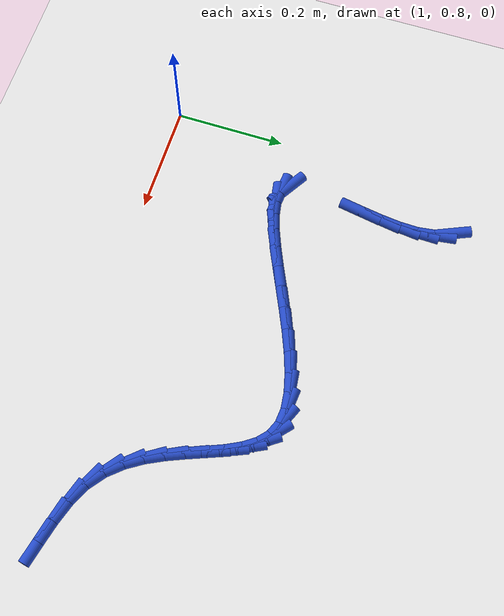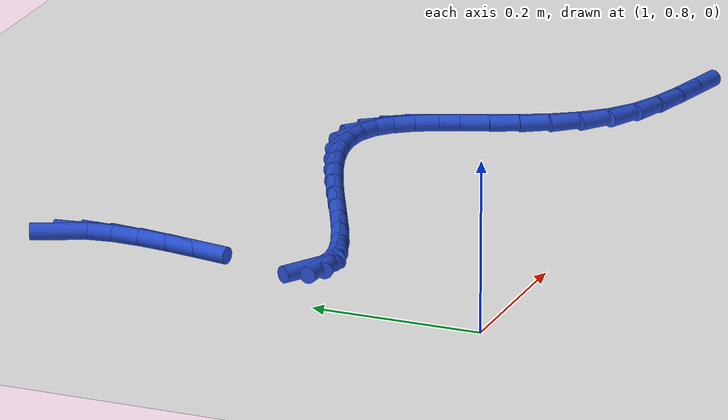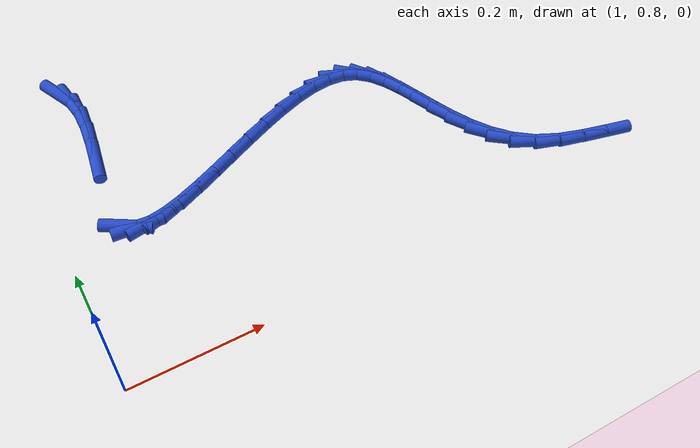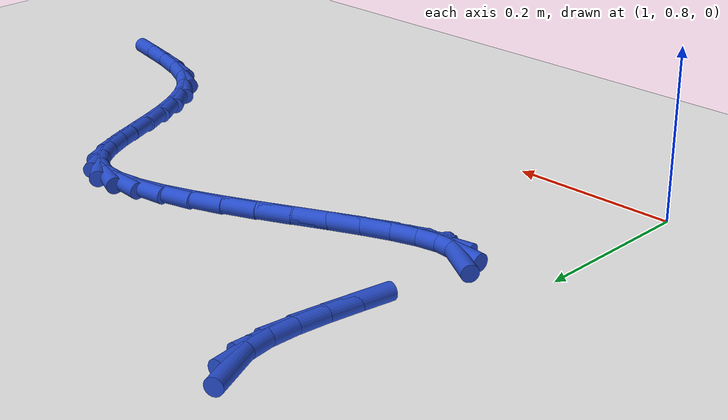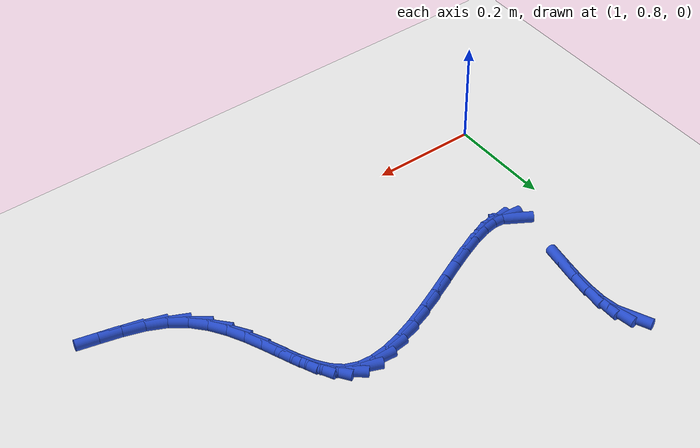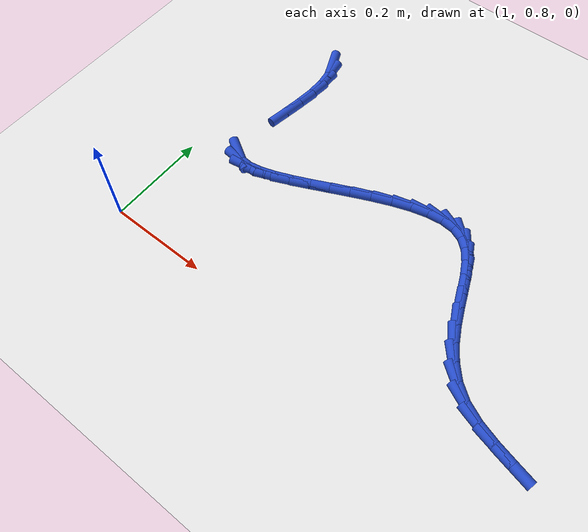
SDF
<sdf version="1.6">
 <world name="default">
  <model name="ground_plane">
   <static>1</static>
   <link name="link">
    <collision name="collision">
     <geometry><plane><normal>0 0 1</normal><size>100 100</size></plane></geometry>
     <surface><friction><ode><mu>100</mu><mu2>50</mu2></ode></friction></surface>
    </collision>
    <visual name="visual">
     <cast_shadows>0</cast_shadows>
     <geometry><plane><normal>0 0 1</normal><size>100 100</size></plane></geometry>
     <material>
      <script><uri>file://media/materials/scripts/gazebo.material</uri><name>Gazebo/WhiteGlow</name></script>
     </material>
    </visual>
   </link>
  </model>
  <model name="line">
   <link name="link_61">
    <pose>1.0926785679842412 1.3435989321293988 0.01 0 1.57 -1.1583868694684745</pose>
    <collision name="collision">
     <geometry><cylinder><radius>0.01</radius><length>0.08</length></cylinder></geometry>
    </collision>
    <visual name="visual">
     <material>
      <script><name>Gazebo/Blue</name><uri>file://media/materials/scripts/gazebo.material</uri></script>
     </material>
     <geometry><cylinder><radius>0.01</radius><length>0.08</length></cylinder></geometry>
    </visual>
   </link>
   <link name="link_62">
    <pose>1.1032755446283458 1.3193772063051687 0.01 0 1.57 -1.4328693255674418</pose>
    <collision name="collision">
     <geometry><cylinder><radius>0.01</radius><length>0.08</length></cylinder></geometry>
    </collision>
    <visual name="visual">
     <material>
      <script><name>Gazebo/Blue</name><uri>file://media/materials/scripts/gazebo.material</uri></script>
     </material>
     <geometry><cylinder><radius>0.01</radius><length>0.08</length></cylinder></geometry>
    </visual>
   </link>
   <link name="link_63">
    <pose>1.1074450222640044 1.2893395475748737 0.01 0 1.57 1.549528040054991</pose>
    <collision name="collision">
     <geometry><cylinder><radius>0.01</radius><length>0.08</length></cylinder></geometry>
    </collision>
    <visual name="visual">
     <material>
      <script><name>Gazebo/Blue</name><uri>file://media/materials/scripts/gazebo.material</uri></script>
     </material>
     <geometry><cylinder><radius>0.01</radius><length>0.08</length></cylinder></geometry>
    </visual>
   </link>
   <link name="link_64">
    <pose>1.1067177775396946 1.2551508479428495 0.01 0 1.57 1.4596487356431156</pose>
    <collision name="collision">
     <geometry><cylinder><radius>0.01</radius><length>0.08</length></cylinder></geometry>
    </collision>
    <visual name="visual">
     <material>
      <script><name>Gazebo/Blue</name><uri>file://media/materials/scripts/gazebo.material</uri></script>
     </material>
     <geometry><cylinder><radius>0.01</radius><length>0.08</length></cylinder></geometry>
    </visual>
   </link>
   <link name="link_65">
    <pose>1.1026245871038927 1.218475999413431 0.01 0 1.57 1.4139883255677506</pose>
    <collision name="collision">
     <geometry><cylinder><radius>0.01</radius><length>0.08</length></cylinder></geometry>
    </collision>
    <visual name="visual">
     <material>
      <script><name>Gazebo/Blue</name><uri>file://media/materials/scripts/gazebo.material</uri></script>
     </material>
     <geometry><cylinder><radius>0.01</radius><length>0.08</length></cylinder></geometry>
    </visual>
   </link>
   <link name="link_66">
    <pose>1.0966962276050753 1.1809798939909537 0.01 0 1.57 1.4023575920434987</pose>
    <collision name="collision">
     <geometry><cylinder><radius>0.01</radius><length>0.08</length></cylinder></geometry>
    </collision>
    <visual name="visual">
     <material>
      <script><name>Gazebo/Blue</name><uri>file://media/materials/scripts/gazebo.material</uri></script>
     </material>
     <geometry><cylinder><radius>0.01</radius><length>0.08</length></cylinder></geometry>
    </visual>
   </link>
   <link name="link_71">
    <pose>1.0930815604191333 1.039424917963502 0.01 0 1.57 -0.547721271546958</pose>
    <collision name="collision">
     <geometry><cylinder><radius>0.01</radius><length>0.08</length></cylinder></geometry>
    </collision>
    <visual name="visual">
     <material>
      <script><name>Gazebo/Blue</name><uri>file://media/materials/scripts/gazebo.material</uri></script>
     </material>
     <geometry><cylinder><radius>0.01</radius><length>0.08</length></cylinder></geometry>
    </visual>
   </link>
   <link name="link_72">
    <pose>1.107280714808188 1.0307637989293044 0.01 0 1.57 -0.08279852546865821</pose>
    <collision name="collision">
     <geometry><cylinder><radius>0.01</radius><length>0.08</length></cylinder></geometry>
    </collision>
    <visual name="visual">
     <material>
      <script><name>Gazebo/Blue</name><uri>file://media/materials/scripts/gazebo.material</uri></script>
     </material>
     <geometry><cylinder><radius>0.01</radius><length>0.08</length></cylinder></geometry>
    </visual>
   </link>
   <link name="link_73">
    <pose>1.1271517943528981 1.0291147326761743 0.01 0 1.57 0.17096384687964966</pose>
    <collision name="collision">
     <geometry><cylinder><radius>0.01</radius><length>0.08</length></cylinder></geometry>
    </collision>
    <visual name="visual">
     <material>
      <script><name>Gazebo/Blue</name><uri>file://media/materials/scripts/gazebo.material</uri></script>
     </material>
     <geometry><cylinder><radius>0.01</radius><length>0.08</length></cylinder></geometry>
    </visual>
   </link>
   <link name="link_74">
    <pose>1.1519142346142703 1.0333899490273684 0.01 0 1.57 0.3056856345329345</pose>
    <collision name="collision">
     <geometry><cylinder><radius>0.01</radius><length>0.08</length></cylinder></geometry>
    </collision>
    <visual name="visual">
     <material>
      <script><name>Gazebo/Blue</name><uri>file://media/materials/scripts/gazebo.material</uri></script>
     </material>
     <geometry><cylinder><radius>0.01</radius><length>0.08</length></cylinder></geometry>
    </visual>
   </link>
   <link name="link_75">
    <pose>1.1807874711533108 1.0425016778061411 0.01 0 1.57 0.3799463334285185</pose>
    <collision name="collision">
     <geometry><cylinder><radius>0.01</radius><length>0.08</length></cylinder></geometry>
    </collision>
    <visual name="visual">
     <material>
      <script><name>Gazebo/Blue</name><uri>file://media/materials/scripts/gazebo.material</uri></script>
     </material>
     <geometry><cylinder><radius>0.01</radius><length>0.08</length></cylinder></geometry>
    </visual>
   </link>
   <link name="link_76">
    <pose>1.212990939531026 1.055362148835749 0.01 0 1.57 0.42003950544704977</pose>
    <collision name="collision">
     <geometry><cylinder><radius>0.01</radius><length>0.08</length></cylinder></geometry>
    </collision>
    <visual name="visual">
     <material>
      <script><name>Gazebo/Blue</name><uri>file://media/materials/scripts/gazebo.material</uri></script>
     </material>
     <geometry><cylinder><radius>0.01</radius><length>0.08</length></cylinder></geometry>
    </visual>
   </link>
   <link name="link_77">
    <pose>1.2477440753084226 1.0708835919394468 0.01 0 1.57 0.4377717410626755</pose>
    <collision name="collision">
     <geometry><cylinder><radius>0.01</radius><length>0.08</length></cylinder></geometry>
    </collision>
    <visual name="visual">
     <material>
      <script><name>Gazebo/Blue</name><uri>file://media/materials/scripts/gazebo.material</uri></script>
     </material>
     <geometry><cylinder><radius>0.01</radius><length>0.08</length></cylinder></geometry>
    </visual>
   </link>
   <link name="link_78">
    <pose>1.2842663140465065 1.087978236940491 0.01 0 1.57 0.4382687998269953</pose>
    <collision name="collision">
     <geometry><cylinder><radius>0.01</radius><length>0.08</length></cylinder></geometry>
    </collision>
    <visual name="visual">
     <material>
      <script><name>Gazebo/Blue</name><uri>file://media/materials/scripts/gazebo.material</uri></script>
     </material>
     <geometry><cylinder><radius>0.01</radius><length>0.08</length></cylinder></geometry>
    </visual>
   </link>
   <link name="link_79">
    <pose>1.3217770913062845 1.1055583136621365 0.01 0 1.57 0.4229487295155975</pose>
    <collision name="collision">
     <geometry><cylinder><radius>0.01</radius><length>0.08</length></cylinder></geometry>
    </collision>
    <visual name="visual">
     <material>
      <script><name>Gazebo/Blue</name><uri>file://media/materials/scripts/gazebo.material</uri></script>
     </material>
     <geometry><cylinder><radius>0.01</radius><length>0.08</length></cylinder></geometry>
    </visual>
   </link>
   <link name="link_80">
    <pose>1.3594958426487627 1.1225360519276393 0.01 0 1.57 0.3904263754747244</pose>
    <collision name="collision">
     <geometry><cylinder><radius>0.01</radius><length>0.08</length></cylinder></geometry>
    </collision>
    <visual name="visual">
     <material>
      <script><name>Gazebo/Blue</name><uri>file://media/materials/scripts/gazebo.material</uri></script>
     </material>
     <geometry><cylinder><radius>0.01</radius><length>0.08</length></cylinder></geometry>
    </visual>
   </link>
   <link name="link_81">
    <pose>1.396642003634948 1.1378236815602554 0.01 0 1.57 0.3362316848617953</pose>
    <collision name="collision">
     <geometry><cylinder><radius>0.01</radius><length>0.08</length></cylinder></geometry>
    </collision>
    <visual name="visual">
     <material>
      <script><name>Gazebo/Blue</name><uri>file://media/materials/scripts/gazebo.material</uri></script>
     </material>
     <geometry><cylinder><radius>0.01</radius><length>0.08</length></cylinder></geometry>
    </visual>
   </link>
   <link name="link_82">
    <pose>1.4324350098258476 1.15033343238324 0.01 0 1.57 0.25137941596256813</pose>
    <collision name="collision">
     <geometry><cylinder><radius>0.01</radius><length>0.08</length></cylinder></geometry>
    </collision>
    <visual name="visual">
     <material>
      <script><name>Gazebo/Blue</name><uri>file://media/materials/scripts/gazebo.material</uri></script>
     </material>
     <geometry><cylinder><radius>0.01</radius><length>0.08</length></cylinder></geometry>
    </visual>
   </link>
   <link name="link_83">
    <pose>1.4660942967824662 1.1589775342198483 0.01 0 1.57 0.11947004068444389</pose>
    <collision name="collision">
     <geometry><cylinder><radius>0.01</radius><length>0.08</length></cylinder></geometry>
    </collision>
    <visual name="visual">
     <material>
      <script><name>Gazebo/Blue</name><uri>file://media/materials/scripts/gazebo.material</uri></script>
     </material>
     <geometry><cylinder><radius>0.01</radius><length>0.08</length></cylinder></geometry>
    </visual>
   </link>
   <link name="link_84">
    <pose>1.4968393000658111 1.162668216893337 0.01 0 1.57 -0.0866766704413471</pose>
    <collision name="collision">
     <geometry><cylinder><radius>0.01</radius><length>0.08</length></cylinder></geometry>
    </collision>
    <visual name="visual">
     <material>
      <script><name>Gazebo/Blue</name><uri>file://media/materials/scripts/gazebo.material</uri></script>
     </material>
     <geometry><cylinder><radius>0.01</radius><length>0.08</length></cylinder></geometry>
    </visual>
   </link>
   <link name="link_85">
    <pose>1.5238894552368891 1.1603177102269613 0.01 0 1.57 -0.393961191452185</pose>
    <collision name="collision">
     <geometry><cylinder><radius>0.01</radius><length>0.08</length></cylinder></geometry>
    </collision>
    <visual name="visual">
     <material>
      <script><name>Gazebo/Blue</name><uri>file://media/materials/scripts/gazebo.material</uri></script>
     </material>
     <geometry><cylinder><radius>0.01</radius><length>0.08</length></cylinder></geometry>
    </visual>
   </link>
   <link name="link_86">
    <pose>1.54652069241328 1.150910063574743 0.01 0 1.57 -0.7224178465812874</pose>
    <collision name="collision">
     <geometry><cylinder><radius>0.01</radius><length>0.08</length></cylinder></geometry>
    </collision>
    <visual name="visual">
     <material>
      <script><name>Gazebo/Blue</name><uri>file://media/materials/scripts/gazebo.material</uri></script>
     </material>
     <geometry><cylinder><radius>0.01</radius><length>0.08</length></cylinder></geometry>
    </visual>
   </link>
   <link name="link_87">
    <pose>1.564969346216868 1.1346502545540293 0.01 0 1.57 -0.9605285834643267</pose>
    <collision name="collision">
     <geometry><cylinder><radius>0.01</radius><length>0.08</length></cylinder></geometry>
    </collision>
    <visual name="visual">
     <material>
      <script><name>Gazebo/Blue</name><uri>file://media/materials/scripts/gazebo.material</uri></script>
     </material>
     <geometry><cylinder><radius>0.01</radius><length>0.08</length></cylinder></geometry>
    </visual>
   </link>
   <link name="link_88">
    <pose>1.5802747379131854 1.1127640692893226 0.01 0 1.57 -1.1041533300694144</pose>
    <collision name="collision">
     <geometry><cylinder><radius>0.01</radius><length>0.08</length></cylinder></geometry>
    </collision>
    <visual name="visual">
     <material>
      <script><name>Gazebo/Blue</name><uri>file://media/materials/scripts/gazebo.material</uri></script>
     </material>
     <geometry><cylinder><radius>0.01</radius><length>0.08</length></cylinder></geometry>
    </visual>
   </link>
   <link name="link_89">
    <pose>1.5935008831310291 1.086508686975355 0.01 0 1.57 -1.176745365445167</pose>
    <collision name="collision">
     <geometry><cylinder><radius>0.01</radius><length>0.08</length></cylinder></geometry>
    </collision>
    <visual name="visual">
     <material>
      <script><name>Gazebo/Blue</name><uri>file://media/materials/scripts/gazebo.material</uri></script>
     </material>
     <geometry><cylinder><radius>0.01</radius><length>0.08</length></cylinder></geometry>
    </visual>
   </link>
   <link name="link_90">
    <pose>1.6057117974991952 1.0571412868068601 0.01 0 1.57 -1.1966342047146767</pose>
    <collision name="collision">
     <geometry><cylinder><radius>0.01</radius><length>0.08</length></cylinder></geometry>
    </collision>
    <visual name="visual">
     <material>
      <script><name>Gazebo/Blue</name><uri>file://media/materials/scripts/gazebo.material</uri></script>
     </material>
     <geometry><cylinder><radius>0.01</radius><length>0.08</length></cylinder></geometry>
    </visual>
   </link>
   <link name="link_91">
    <pose>1.6179714966464798 1.0259190479785705 0.01 0 1.57 -1.1729508388481462</pose>
    <collision name="collision">
     <geometry><cylinder><radius>0.01</radius><length>0.08</length></cylinder></geometry>
    </collision>
    <visual name="visual">
     <material>
      <script><name>Gazebo/Blue</name><uri>file://media/materials/scripts/gazebo.material</uri></script>
     </material>
     <geometry><cylinder><radius>0.01</radius><length>0.08</length></cylinder></geometry>
    </visual>
   </link>
   <link name="link_92">
    <pose>1.63134399620168 0.9940991496852185 0.01 0 1.57 -1.1079416715535984</pose>
    <collision name="collision">
     <geometry><cylinder><radius>0.01</radius><length>0.08</length></cylinder></geometry>
    </collision>
    <visual name="visual">
     <material>
      <script><name>Gazebo/Blue</name><uri>file://media/materials/scripts/gazebo.material</uri></script>
     </material>
     <geometry><cylinder><radius>0.01</radius><length>0.08</length></cylinder></geometry>
    </visual>
   </link>
   <link name="link_93">
    <pose>1.646893311793592 0.9629387711215369 0.01 0 1.57 -0.9996853810551171</pose>
    <collision name="collision">
     <geometry><cylinder><radius>0.01</radius><length>0.08</length></cylinder></geometry>
    </collision>
    <visual name="visual">
     <material>
      <script><name>Gazebo/Blue</name><uri>file://media/materials/scripts/gazebo.material</uri></script>
     </material>
     <geometry><cylinder><radius>0.01</radius><length>0.08</length></cylinder></geometry>
    </visual>
   </link>
   <link name="link_94">
    <pose>1.6656834590510115 0.9336950914822587 0.01 0 1.57 -0.8458313356095467</pose>
    <collision name="collision">
     <geometry><cylinder><radius>0.01</radius><length>0.08</length></cylinder></geometry>
    </collision>
    <visual name="visual">
     <material>
      <script><name>Gazebo/Blue</name><uri>file://media/materials/scripts/gazebo.material</uri></script>
     </material>
     <geometry><cylinder><radius>0.01</radius><length>0.08</length></cylinder></geometry>
    </visual>
   </link>
   <link name="link_95">
    <pose>1.6887784536027353 0.9076252899621163 0.01 0 1.57 -0.6500087843435214</pose>
    <collision name="collision">
     <geometry><cylinder><radius>0.01</radius><length>0.08</length></cylinder></geometry>
    </collision>
    <visual name="visual">
     <material>
      <script><name>Gazebo/Blue</name><uri>file://media/materials/scripts/gazebo.material</uri></script>
     </material>
     <geometry><cylinder><radius>0.01</radius><length>0.08</length></cylinder></geometry>
    </visual>
   </link>
   <link name="link_96">
    <pose>1.7172423110775594 0.8859865457558429 0.01 0 1.57 -0.44486841573173475</pose>
    <collision name="collision">
     <geometry><cylinder><radius>0.01</radius><length>0.08</length></cylinder></geometry>
    </collision>
    <visual name="visual">
     <material>
      <script><name>Gazebo/Blue</name><uri>file://media/materials/scripts/gazebo.material</uri></script>
     </material>
     <geometry><cylinder><radius>0.01</radius><length>0.08</length></cylinder></geometry>
    </visual>
   </link>
   <link name="link_97">
    <pose>1.7515917419548144 0.8696107410355515 0.01 0 1.57 -0.3091020846578411</pose>
    <collision name="collision">
     <geometry><cylinder><radius>0.01</radius><length>0.08</length></cylinder></geometry>
    </collision>
    <visual name="visual">
     <material>
      <script><name>Gazebo/Blue</name><uri>file://media/materials/scripts/gazebo.material</uri></script>
     </material>
     <geometry><cylinder><radius>0.01</radius><length>0.08</length></cylinder></geometry>
    </visual>
   </link>
   <link name="link_98">
    <pose>1.7898511671955133 0.8573930626715125 0.01 0 1.57 -0.24126021685858764</pose>
    <collision name="collision">
     <geometry><cylinder><radius>0.01</radius><length>0.08</length></cylinder></geometry>
    </collision>
    <visual name="visual">
     <material>
      <script><name>Gazebo/Blue</name><uri>file://media/materials/scripts/gazebo.material</uri></script>
     </material>
     <geometry><cylinder><radius>0.01</radius><length>0.08</length></cylinder></geometry>
    </visual>
   </link>
   <link name="link_99">
    <pose>1.8293359642576468 0.8476777177176407 0.01 0 1.57 -0.22913785163942985</pose>
    <collision name="collision">
     <geometry><cylinder><radius>0.01</radius><length>0.08</length></cylinder></geometry>
    </collision>
    <visual name="visual">
     <material>
      <script><name>Gazebo/Blue</name><uri>file://media/materials/scripts/gazebo.material</uri></script>
     </material>
     <geometry><cylinder><radius>0.01</radius><length>0.08</length></cylinder></geometry>
    </visual>
   </link>
  </model>
 </world>
</sdf>
